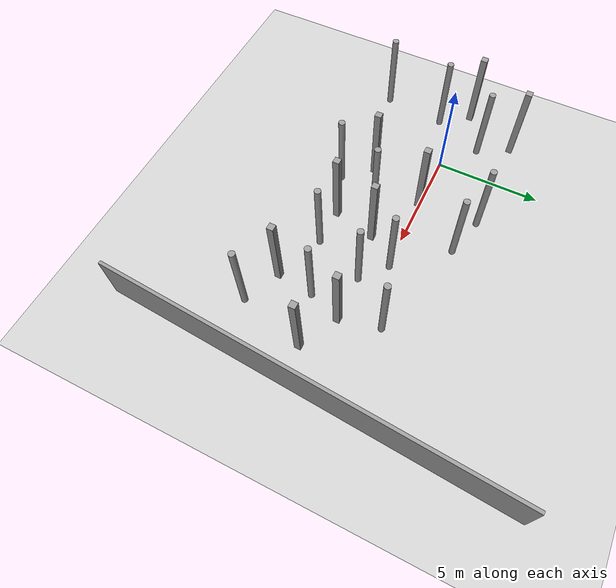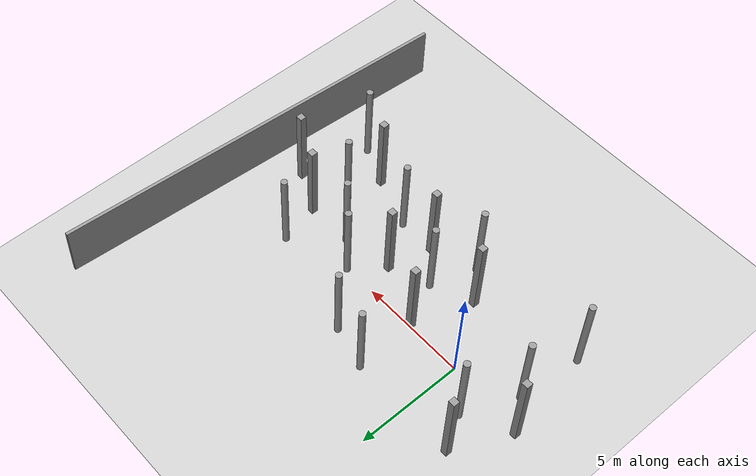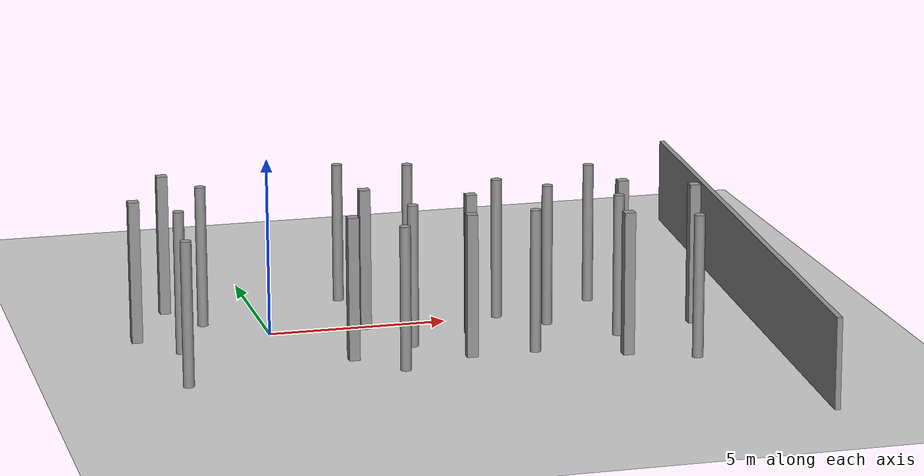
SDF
<sdf version="1.6">
 <world name="default">
  <model name="ground_plane">
   <static>1</static>
   <link name="link">
    <collision name="collision">
     <geometry><plane><normal>0 0 1</normal><size>100 100</size></plane></geometry>
    </collision>
    <visual name="visual">
     <cast_shadows>0</cast_shadows>
     <geometry><plane><normal>0 0 1</normal><size>100 100</size></plane></geometry>
     <material>
      <script><uri>file://media/materials/scripts/gazebo.material</uri><name>Gazebo/Gray</name></script>
     </material>
    </visual>
   </link>
  </model>
  <model name="unit_box_clone">
   <link name="link">
    <inertial>
     <mass>1000</mass>
     <inertia><ixx>166.667</ixx><ixy>0</ixy><ixz>0</ixz><iyy>166.667</iyy><iyz>0</iyz><izz>166.667</izz></inertia>
    </inertial>
    <visual name="visual">
     <geometry><box><size>0.3 0.3 4</size></box></geometry>
     <material>
      <script><name>Gazebo/Grey</name><uri>file://media/materials/scripts/gazebo.material</uri></script>
      <shader type="vertex"><normal_map>__default__</normal_map></shader>
      <ambient>0.3 0.3 0.3 1</ambient>
      <diffuse>0.7 0.7 0.7 1</diffuse>
      <specular>0.01 0.01 0.01 1</specular>
      <emissive>0 0 0 1</emissive>
     </material>
    </visual>
    <collision name="collision">
     <geometry><box><size>0.3 0.3 4</size></box></geometry>
     <surface>
      <friction>
       <ode><mu>1</mu><mu2>1</mu2><fdir1>0 0 0</fdir1><slip1>0</slip1><slip2>0</slip2></ode>
       <torsional>
        <coefficient>1</coefficient>
        <patch_radius>0</patch_radius>
        <surface_radius>0</surface_radius>
        <use_patch_radius>1</use_patch_radius>
        <ode><slip>0</slip></ode>
       </torsional>
      </friction>
      <bounce><restitution_coefficient>0</restitution_coefficient><threshold>1e+06</threshold></bounce>
      <contact>
       <collide_without_contact>0</collide_without_contact>
       <collide_without_contact_bitmask>1</collide_without_contact_bitmask>
       <collide_bitmask>1</collide_bitmask>
       <ode>
        <soft_cfm>0</soft_cfm>
        <soft_erp>0.2</soft_erp>
        <kp>1e+13</kp>
        <kd>1</kd>
        <max_vel>0.01</max_vel>
        <min_depth>0</min_depth>
       </ode>
       <bullet>
        <split_impulse>1</split_impulse>
        <split_impulse_penetration_threshold>-0.01</split_impulse_penetration_threshold>
        <soft_cfm>0</soft_cfm>
        <soft_erp>0.2</soft_erp>
        <kp>1e+13</kp>
        <kd>1</kd>
       </bullet>
      </contact>
     </surface>
    </collision>
   </link>
   <static>0</static>
   <pose>-3.66858 0.277519 2.00001 -6.1e-05 -2e-06 -0.000344</pose>
  </model>
  <model name="unit_box_clone_2">
   <link name="link">
    <inertial>
     <mass>1000</mass>
     <inertia><ixx>166.667</ixx><ixy>0</ixy><ixz>0</ixz><iyy>166.667</iyy><iyz>0</iyz><izz>166.667</izz></inertia>
    </inertial>
    <visual name="visual">
     <geometry><box><size>0.3 0.3 4</size></box></geometry>
     <material>
      <script><name>Gazebo/Grey</name><uri>file://media/materials/scripts/gazebo.material</uri></script>
      <shader type="vertex"><normal_map>__default__</normal_map></shader>
      <ambient>0.3 0.3 0.3 1</ambient>
      <diffuse>0.7 0.7 0.7 1</diffuse>
      <specular>0.01 0.01 0.01 1</specular>
      <emissive>0 0 0 1</emissive>
     </material>
    </visual>
    <collision name="collision">
     <geometry><box><size>0.3 0.3 4</size></box></geometry>
     <surface>
      <friction>
       <ode><mu>1</mu><mu2>1</mu2><fdir1>0 0 0</fdir1><slip1>0</slip1><slip2>0</slip2></ode>
       <torsional>
        <coefficient>1</coefficient>
        <patch_radius>0</patch_radius>
        <surface_radius>0</surface_radius>
        <use_patch_radius>1</use_patch_radius>
        <ode><slip>0</slip></ode>
       </torsional>
      </friction>
      <bounce><restitution_coefficient>0</restitution_coefficient><threshold>1e+06</threshold></bounce>
      <contact>
       <collide_without_contact>0</collide_without_contact>
       <collide_without_contact_bitmask>1</collide_without_contact_bitmask>
       <collide_bitmask>1</collide_bitmask>
       <ode>
        <soft_cfm>0</soft_cfm>
        <soft_erp>0.2</soft_erp>
        <kp>1e+13</kp>
        <kd>1</kd>
        <max_vel>0.01</max_vel>
        <min_depth>0</min_depth>
       </ode>
       <bullet>
        <split_impulse>1</split_impulse>
        <split_impulse_penetration_threshold>-0.01</split_impulse_penetration_threshold>
        <soft_cfm>0</soft_cfm>
        <soft_erp>0.2</soft_erp>
        <kp>1e+13</kp>
        <kd>1</kd>
       </bullet>
      </contact>
     </surface>
    </collision>
   </link>
   <static>0</static>
   <pose>4.92525 -3.34794 2 7e-06 -1.8e-05 -0.008091</pose>
  </model>
  <model name="unit_box_clone_17">
   <link name="link">
    <inertial>
     <mass>1000</mass>
     <inertia><ixx>166.667</ixx><ixy>0</ixy><ixz>0</ixz><iyy>166.667</iyy><iyz>0</iyz><izz>166.667</izz></inertia>
    </inertial>
    <visual name="visual">
     <geometry><box><size>0.3 0.3 4</size></box></geometry>
     <material>
      <script><name>Gazebo/Grey</name><uri>file://media/materials/scripts/gazebo.material</uri></script>
      <shader type="vertex"><normal_map>__default__</normal_map></shader>
      <ambient>0.3 0.3 0.3 1</ambient>
      <diffuse>0.7 0.7 0.7 1</diffuse>
      <specular>0.01 0.01 0.01 1</specular>
      <emissive>0 0 0 1</emissive>
     </material>
    </visual>
    <collision name="collision">
     <geometry><box><size>0.3 0.3 4</size></box></geometry>
     <surface>
      <friction>
       <ode><mu>1</mu><mu2>1</mu2><fdir1>0 0 0</fdir1><slip1>0</slip1><slip2>0</slip2></ode>
       <torsional>
        <coefficient>1</coefficient>
        <patch_radius>0</patch_radius>
        <surface_radius>0</surface_radius>
        <use_patch_radius>1</use_patch_radius>
        <ode><slip>0</slip></ode>
       </torsional>
      </friction>
      <bounce><restitution_coefficient>0</restitution_coefficient><threshold>1e+06</threshold></bounce>
      <contact>
       <collide_without_contact>0</collide_without_contact>
       <collide_without_contact_bitmask>1</collide_without_contact_bitmask>
       <collide_bitmask>1</collide_bitmask>
       <ode>
        <soft_cfm>0</soft_cfm>
        <soft_erp>0.2</soft_erp>
        <kp>1e+13</kp>
        <kd>1</kd>
        <max_vel>0.01</max_vel>
        <min_depth>0</min_depth>
       </ode>
       <bullet>
        <split_impulse>1</split_impulse>
        <split_impulse_penetration_threshold>-0.01</split_impulse_penetration_threshold>
        <soft_cfm>0</soft_cfm>
        <soft_erp>0.2</soft_erp>
        <kp>1e+13</kp>
        <kd>1</kd>
       </bullet>
      </contact>
     </surface>
    </collision>
   </link>
   <static>0</static>
   <pose>-2.44658 2.8469 2 0 -1e-06 -0.000979</pose>
  </model>
  <model name="unit_cylinder_clone">
   <link name="link">
    <inertial>
     <mass>1000</mass>
     <inertia><ixx>145.833</ixx><ixy>0</ixy><ixz>0</ixz><iyy>145.833</iyy><iyz>0</iyz><izz>125</izz></inertia>
    </inertial>
    <visual name="visual">
     <geometry><cylinder><radius>0.15</radius><length>4</length></cylinder></geometry>
     <material>
      <script><name>Gazebo/Grey</name><uri>file://media/materials/scripts/gazebo.material</uri></script>
      <shader type="vertex"><normal_map>__default__</normal_map></shader>
      <ambient>0.3 0.3 0.3 1</ambient>
      <diffuse>0.7 0.7 0.7 1</diffuse>
      <specular>0.01 0.01 0.01 1</specular>
      <emissive>0 0 0 1</emissive>
     </material>
    </visual>
    <collision name="collision">
     <geometry><cylinder><radius>0.15</radius><length>4</length></cylinder></geometry>
     <surface>
      <friction>
       <ode><mu>1</mu><mu2>1</mu2><fdir1>0 0 0</fdir1><slip1>0</slip1><slip2>0</slip2></ode>
       <torsional>
        <coefficient>1</coefficient>
        <patch_radius>0</patch_radius>
        <surface_radius>0</surface_radius>
        <use_patch_radius>1</use_patch_radius>
        <ode><slip>0</slip></ode>
       </torsional>
      </friction>
      <bounce><restitution_coefficient>0</restitution_coefficient><threshold>1e+06</threshold></bounce>
      <contact>
       <collide_without_contact>0</collide_without_contact>
       <collide_without_contact_bitmask>1</collide_without_contact_bitmask>
       <collide_bitmask>1</collide_bitmask>
       <ode>
        <soft_cfm>0</soft_cfm>
        <soft_erp>0.2</soft_erp>
        <kp>1e+13</kp>
        <kd>1</kd>
        <max_vel>0.01</max_vel>
        <min_depth>0</min_depth>
       </ode>
       <bullet>
        <split_impulse>1</split_impulse>
        <split_impulse_penetration_threshold>-0.01</split_impulse_penetration_threshold>
        <soft_cfm>0</soft_cfm>
        <soft_erp>0.2</soft_erp>
        <kp>1e+13</kp>
        <kd>1</kd>
       </bullet>
      </contact>
     </surface>
    </collision>
   </link>
   <static>0</static>
   <pose>-1.61793 1.36476 1.99998 -1e-06 1e-06 -0.091973</pose>
  </model>
  <model name="unit_cylinder_clone_0">
   <link name="link">
    <inertial>
     <mass>1000</mass>
     <inertia><ixx>145.833</ixx><ixy>0</ixy><ixz>0</ixz><iyy>145.833</iyy><iyz>0</iyz><izz>125</izz></inertia>
    </inertial>
    <visual name="visual">
     <geometry><cylinder><radius>0.15</radius><length>4</length></cylinder></geometry>
     <material>
      <script><name>Gazebo/Grey</name><uri>file://media/materials/scripts/gazebo.material</uri></script>
      <shader type="vertex"><normal_map>__default__</normal_map></shader>
      <ambient>0.3 0.3 0.3 1</ambient>
      <diffuse>0.7 0.7 0.7 1</diffuse>
      <specular>0.01 0.01 0.01 1</specular>
      <emissive>0 0 0 1</emissive>
     </material>
    </visual>
    <collision name="collision">
     <geometry><cylinder><radius>0.15</radius><length>4</length></cylinder></geometry>
     <surface>
      <friction>
       <ode><mu>1</mu><mu2>1</mu2><fdir1>0 0 0</fdir1><slip1>0</slip1><slip2>0</slip2></ode>
       <torsional>
        <coefficient>1</coefficient>
        <patch_radius>0</patch_radius>
        <surface_radius>0</surface_radius>
        <use_patch_radius>1</use_patch_radius>
        <ode><slip>0</slip></ode>
       </torsional>
      </friction>
      <bounce><restitution_coefficient>0</restitution_coefficient><threshold>1e+06</threshold></bounce>
      <contact>
       <collide_without_contact>0</collide_without_contact>
       <collide_without_contact_bitmask>1</collide_without_contact_bitmask>
       <collide_bitmask>1</collide_bitmask>
       <ode>
        <soft_cfm>0</soft_cfm>
        <soft_erp>0.2</soft_erp>
        <kp>1e+13</kp>
        <kd>1</kd>
        <max_vel>0.01</max_vel>
        <min_depth>0</min_depth>
       </ode>
       <bullet>
        <split_impulse>1</split_impulse>
        <split_impulse_penetration_threshold>-0.01</split_impulse_penetration_threshold>
        <soft_cfm>0</soft_cfm>
        <soft_erp>0.2</soft_erp>
        <kp>1e+13</kp>
        <kd>1</kd>
       </bullet>
      </contact>
     </surface>
    </collision>
   </link>
   <static>0</static>
   <pose>6.71936 -3.36683 1.99998 -2e-06 -0 -0.080782</pose>
  </model>
  <model name="unit_cylinder_clone_0_clone">
   <link name="link">
    <inertial>
     <mass>1000</mass>
     <inertia><ixx>145.833</ixx><ixy>0</ixy><ixz>0</ixz><iyy>145.833</iyy><iyz>0</iyz><izz>125</izz></inertia>
    </inertial>
    <visual name="visual">
     <geometry><cylinder><radius>0.15</radius><length>4</length></cylinder></geometry>
     <material>
      <script><name>Gazebo/Grey</name><uri>file://media/materials/scripts/gazebo.material</uri></script>
      <shader type="vertex"><normal_map>__default__</normal_map></shader>
      <ambient>0.3 0.3 0.3 1</ambient>
      <diffuse>0.7 0.7 0.7 1</diffuse>
      <specular>0.01 0.01 0.01 1</specular>
      <emissive>0 0 0 1</emissive>
     </material>
    </visual>
    <collision name="collision">
     <geometry><cylinder><radius>0.15</radius><length>4</length></cylinder></geometry>
     <surface>
      <friction>
       <ode><mu>1</mu><mu2>1</mu2><fdir1>0 0 0</fdir1><slip1>0</slip1><slip2>0</slip2></ode>
       <torsional>
        <coefficient>1</coefficient>
        <patch_radius>0</patch_radius>
        <surface_radius>0</surface_radius>
        <use_patch_radius>1</use_patch_radius>
        <ode><slip>0</slip></ode>
       </torsional>
      </friction>
      <bounce><restitution_coefficient>0</restitution_coefficient><threshold>1e+06</threshold></bounce>
      <contact>
       <collide_without_contact>0</collide_without_contact>
       <collide_without_contact_bitmask>1</collide_without_contact_bitmask>
       <collide_bitmask>1</collide_bitmask>
       <ode>
        <soft_cfm>0</soft_cfm>
        <soft_erp>0.2</soft_erp>
        <kp>1e+13</kp>
        <kd>1</kd>
        <max_vel>0.01</max_vel>
        <min_depth>0</min_depth>
       </ode>
       <bullet>
        <split_impulse>1</split_impulse>
        <split_impulse_penetration_threshold>-0.01</split_impulse_penetration_threshold>
        <soft_cfm>0</soft_cfm>
        <soft_erp>0.2</soft_erp>
        <kp>1e+13</kp>
        <kd>1</kd>
       </bullet>
      </contact>
     </surface>
    </collision>
   </link>
   <static>0</static>
   <pose>10.8459 -4.99246 1.99998 -1e-06 -1e-06 -0.075138</pose>
  </model>
  <model name="unit_cylinder_clone_6">
   <link name="link">
    <inertial>
     <mass>1000</mass>
     <inertia><ixx>145.833</ixx><ixy>0</ixy><ixz>0</ixz><iyy>145.833</iyy><iyz>0</iyz><izz>125</izz></inertia>
    </inertial>
    <visual name="visual">
     <geometry><cylinder><radius>0.15</radius><length>4</length></cylinder></geometry>
     <material>
      <script><name>Gazebo/Grey</name><uri>file://media/materials/scripts/gazebo.material</uri></script>
      <shader type="vertex"><normal_map>__default__</normal_map></shader>
      <ambient>0.3 0.3 0.3 1</ambient>
      <diffuse>0.7 0.7 0.7 1</diffuse>
      <specular>0.01 0.01 0.01 1</specular>
      <emissive>0 0 0 1</emissive>
     </material>
    </visual>
    <collision name="collision">
     <geometry><cylinder><radius>0.15</radius><length>4</length></cylinder></geometry>
     <surface>
      <friction>
       <ode><mu>1</mu><mu2>1</mu2><fdir1>0 0 0</fdir1><slip1>0</slip1><slip2>0</slip2></ode>
       <torsional>
        <coefficient>1</coefficient>
        <patch_radius>0</patch_radius>
        <surface_radius>0</surface_radius>
        <use_patch_radius>1</use_patch_radius>
        <ode><slip>0</slip></ode>
       </torsional>
      </friction>
      <bounce><restitution_coefficient>0</restitution_coefficient><threshold>1e+06</threshold></bounce>
      <contact>
       <collide_without_contact>0</collide_without_contact>
       <collide_without_contact_bitmask>1</collide_without_contact_bitmask>
       <collide_bitmask>1</collide_bitmask>
       <ode>
        <soft_cfm>0</soft_cfm>
        <soft_erp>0.2</soft_erp>
        <kp>1e+13</kp>
        <kd>1</kd>
        <max_vel>0.01</max_vel>
        <min_depth>0</min_depth>
       </ode>
       <bullet>
        <split_impulse>1</split_impulse>
        <split_impulse_penetration_threshold>-0.01</split_impulse_penetration_threshold>
        <soft_cfm>0</soft_cfm>
        <soft_erp>0.2</soft_erp>
        <kp>1e+13</kp>
        <kd>1</kd>
       </bullet>
      </contact>
     </surface>
    </collision>
   </link>
   <static>0</static>
   <pose>4.51495 2.35309 1.99998 -1e-06 1e-06 -0.081282</pose>
  </model>
  <model name="unit_cylinder_clone_1_clone_7">
   <link name="link">
    <inertial>
     <mass>1000</mass>
     <inertia><ixx>145.833</ixx><ixy>0</ixy><ixz>0</ixz><iyy>145.833</iyy><iyz>0</iyz><izz>125</izz></inertia>
    </inertial>
    <visual name="visual">
     <geometry><cylinder><radius>0.15</radius><length>4</length></cylinder></geometry>
     <material>
      <script><name>Gazebo/Grey</name><uri>file://media/materials/scripts/gazebo.material</uri></script>
      <shader type="vertex"><normal_map>__default__</normal_map></shader>
      <ambient>0.3 0.3 0.3 1</ambient>
      <diffuse>0.7 0.7 0.7 1</diffuse>
      <specular>0.01 0.01 0.01 1</specular>
      <emissive>0 0 0 1</emissive>
     </material>
    </visual>
    <collision name="collision">
     <geometry><cylinder><radius>0.15</radius><length>4</length></cylinder></geometry>
     <surface>
      <friction>
       <ode><mu>1</mu><mu2>1</mu2><fdir1>0 0 0</fdir1><slip1>0</slip1><slip2>0</slip2></ode>
       <torsional>
        <coefficient>1</coefficient>
        <patch_radius>0</patch_radius>
        <surface_radius>0</surface_radius>
        <use_patch_radius>1</use_patch_radius>
        <ode><slip>0</slip></ode>
       </torsional>
      </friction>
      <bounce><restitution_coefficient>0</restitution_coefficient><threshold>1e+06</threshold></bounce>
      <contact>
       <collide_without_contact>0</collide_without_contact>
       <collide_without_contact_bitmask>1</collide_without_contact_bitmask>
       <collide_bitmask>1</collide_bitmask>
       <ode>
        <soft_cfm>0</soft_cfm>
        <soft_erp>0.2</soft_erp>
        <kp>1e+13</kp>
        <kd>1</kd>
        <max_vel>0.01</max_vel>
        <min_depth>0</min_depth>
       </ode>
       <bullet>
        <split_impulse>1</split_impulse>
        <split_impulse_penetration_threshold>-0.01</split_impulse_penetration_threshold>
        <soft_cfm>0</soft_cfm>
        <soft_erp>0.2</soft_erp>
        <kp>1e+13</kp>
        <kd>1</kd>
       </bullet>
      </contact>
     </surface>
    </collision>
   </link>
   <static>0</static>
   <pose>7.72395 -0.939014 1.99995 -0.000251 0.000106 -0.39408</pose>
  </model>
  <model name="unit_cylinder_clone_1_clone_8">
   <link name="link">
    <inertial>
     <mass>1000</mass>
     <inertia><ixx>145.833</ixx><ixy>0</ixy><ixz>0</ixz><iyy>145.833</iyy><iyz>0</iyz><izz>125</izz></inertia>
    </inertial>
    <visual name="visual">
     <geometry><cylinder><radius>0.15</radius><length>4</length></cylinder></geometry>
     <material>
      <script><name>Gazebo/Grey</name><uri>file://media/materials/scripts/gazebo.material</uri></script>
      <shader type="vertex"><normal_map>__default__</normal_map></shader>
      <ambient>0.3 0.3 0.3 1</ambient>
      <diffuse>0.7 0.7 0.7 1</diffuse>
      <specular>0.01 0.01 0.01 1</specular>
      <emissive>0 0 0 1</emissive>
     </material>
    </visual>
    <collision name="collision">
     <geometry><cylinder><radius>0.15</radius><length>4</length></cylinder></geometry>
     <surface>
      <friction>
       <ode><mu>1</mu><mu2>1</mu2><fdir1>0 0 0</fdir1><slip1>0</slip1><slip2>0</slip2></ode>
       <torsional>
        <coefficient>1</coefficient>
        <patch_radius>0</patch_radius>
        <surface_radius>0</surface_radius>
        <use_patch_radius>1</use_patch_radius>
        <ode><slip>0</slip></ode>
       </torsional>
      </friction>
      <bounce><restitution_coefficient>0</restitution_coefficient><threshold>1e+06</threshold></bounce>
      <contact>
       <collide_without_contact>0</collide_without_contact>
       <collide_without_contact_bitmask>1</collide_without_contact_bitmask>
       <collide_bitmask>1</collide_bitmask>
       <ode>
        <soft_cfm>0</soft_cfm>
        <soft_erp>0.2</soft_erp>
        <kp>1e+13</kp>
        <kd>1</kd>
        <max_vel>0.01</max_vel>
        <min_depth>0</min_depth>
       </ode>
       <bullet>
        <split_impulse>1</split_impulse>
        <split_impulse_penetration_threshold>-0.01</split_impulse_penetration_threshold>
        <soft_cfm>0</soft_cfm>
        <soft_erp>0.2</soft_erp>
        <kp>1e+13</kp>
        <kd>1</kd>
       </bullet>
      </contact>
     </surface>
    </collision>
   </link>
   <static>0</static>
   <pose>-2.65577 -1.06297 1.99995 -0.000251 0.000106 -0.392708</pose>
  </model>
  <model name="unit_cylinder_clone_1_clone_29">
   <link name="link">
    <inertial>
     <mass>1000</mass>
     <inertia><ixx>145.833</ixx><ixy>0</ixy><ixz>0</ixz><iyy>145.833</iyy><iyz>0</iyz><izz>125</izz></inertia>
    </inertial>
    <visual name="visual">
     <geometry><cylinder><radius>0.15</radius><length>4</length></cylinder></geometry>
     <material>
      <script><name>Gazebo/Grey</name><uri>file://media/materials/scripts/gazebo.material</uri></script>
      <shader type="vertex"><normal_map>__default__</normal_map></shader>
      <ambient>0.3 0.3 0.3 1</ambient>
      <diffuse>0.7 0.7 0.7 1</diffuse>
      <specular>0.01 0.01 0.01 1</specular>
      <emissive>0 0 0 1</emissive>
     </material>
    </visual>
    <collision name="collision">
     <geometry><cylinder><radius>0.15</radius><length>4</length></cylinder></geometry>
     <surface>
      <friction>
       <ode><mu>1</mu><mu2>1</mu2><fdir1>0 0 0</fdir1><slip1>0</slip1><slip2>0</slip2></ode>
       <torsional>
        <coefficient>1</coefficient>
        <patch_radius>0</patch_radius>
        <surface_radius>0</surface_radius>
        <use_patch_radius>1</use_patch_radius>
        <ode><slip>0</slip></ode>
       </torsional>
      </friction>
      <bounce><restitution_coefficient>0</restitution_coefficient><threshold>1e+06</threshold></bounce>
      <contact>
       <collide_without_contact>0</collide_without_contact>
       <collide_without_contact_bitmask>1</collide_without_contact_bitmask>
       <collide_bitmask>1</collide_bitmask>
       <ode>
        <soft_cfm>0</soft_cfm>
        <soft_erp>0.2</soft_erp>
        <kp>1e+13</kp>
        <kd>1</kd>
        <max_vel>0.01</max_vel>
        <min_depth>0</min_depth>
       </ode>
       <bullet>
        <split_impulse>1</split_impulse>
        <split_impulse_penetration_threshold>-0.01</split_impulse_penetration_threshold>
        <soft_cfm>0</soft_cfm>
        <soft_erp>0.2</soft_erp>
        <kp>1e+13</kp>
        <kd>1</kd>
       </bullet>
      </contact>
     </surface>
    </collision>
   </link>
   <static>0</static>
   <pose>9.34914 -2.44759 1.99995 -0.000251 0.000106 -0.394694</pose>
  </model>
  <model name="unit_cylinder_clone_1_clone_33">
   <link name="link">
    <inertial>
     <mass>1000</mass>
     <inertia><ixx>145.833</ixx><ixy>0</ixy><ixz>0</ixz><iyy>145.833</iyy><iyz>0</iyz><izz>125</izz></inertia>
    </inertial>
    <visual name="visual">
     <geometry><cylinder><radius>0.15</radius><length>4</length></cylinder></geometry>
     <material>
      <script><name>Gazebo/Grey</name><uri>file://media/materials/scripts/gazebo.material</uri></script>
      <shader type="vertex"><normal_map>__default__</normal_map></shader>
      <ambient>0.3 0.3 0.3 1</ambient>
      <diffuse>0.7 0.7 0.7 1</diffuse>
      <specular>0.01 0.01 0.01 1</specular>
      <emissive>0 0 0 1</emissive>
     </material>
    </visual>
    <collision name="collision">
     <geometry><cylinder><radius>0.15</radius><length>4</length></cylinder></geometry>
     <surface>
      <friction>
       <ode><mu>1</mu><mu2>1</mu2><fdir1>0 0 0</fdir1><slip1>0</slip1><slip2>0</slip2></ode>
       <torsional>
        <coefficient>1</coefficient>
        <patch_radius>0</patch_radius>
        <surface_radius>0</surface_radius>
        <use_patch_radius>1</use_patch_radius>
        <ode><slip>0</slip></ode>
       </torsional>
      </friction>
      <bounce><restitution_coefficient>0</restitution_coefficient><threshold>1e+06</threshold></bounce>
      <contact>
       <collide_without_contact>0</collide_without_contact>
       <collide_without_contact_bitmask>1</collide_without_contact_bitmask>
       <collide_bitmask>1</collide_bitmask>
       <ode>
        <soft_cfm>0</soft_cfm>
        <soft_erp>0.2</soft_erp>
        <kp>1e+13</kp>
        <kd>1</kd>
        <max_vel>0.01</max_vel>
        <min_depth>0</min_depth>
       </ode>
       <bullet>
        <split_impulse>1</split_impulse>
        <split_impulse_penetration_threshold>-0.01</split_impulse_penetration_threshold>
        <soft_cfm>0</soft_cfm>
        <soft_erp>0.2</soft_erp>
        <kp>1e+13</kp>
        <kd>1</kd>
       </bullet>
      </contact>
     </surface>
    </collision>
   </link>
   <static>0</static>
   <pose>-2.98881 -4.04362 1.99995 -0.00025 0.000108 -0.386939</pose>
  </model>
  <model name="unit_cylinder_clone_1_clone_7_clone_9">
   <link name="link">
    <inertial>
     <mass>1000</mass>
     <inertia><ixx>145.833</ixx><ixy>0</ixy><ixz>0</ixz><iyy>145.833</iyy><iyz>0</iyz><izz>125</izz></inertia>
    </inertial>
    <visual name="visual">
     <geometry><cylinder><radius>0.15</radius><length>4</length></cylinder></geometry>
     <material>
      <script><name>Gazebo/Grey</name><uri>file://media/materials/scripts/gazebo.material</uri></script>
      <shader type="vertex"><normal_map>__default__</normal_map></shader>
      <ambient>0.3 0.3 0.3 1</ambient>
      <diffuse>0.7 0.7 0.7 1</diffuse>
      <specular>0.01 0.01 0.01 1</specular>
      <emissive>0 0 0 1</emissive>
     </material>
    </visual>
    <collision name="collision">
     <geometry><cylinder><radius>0.15</radius><length>4</length></cylinder></geometry>
     <surface>
      <friction>
       <ode><mu>1</mu><mu2>1</mu2><fdir1>0 0 0</fdir1><slip1>0</slip1><slip2>0</slip2></ode>
       <torsional>
        <coefficient>1</coefficient>
        <patch_radius>0</patch_radius>
        <surface_radius>0</surface_radius>
        <use_patch_radius>1</use_patch_radius>
        <ode><slip>0</slip></ode>
       </torsional>
      </friction>
      <bounce><restitution_coefficient>0</restitution_coefficient><threshold>1e+06</threshold></bounce>
      <contact>
       <collide_without_contact>0</collide_without_contact>
       <collide_without_contact_bitmask>1</collide_without_contact_bitmask>
       <collide_bitmask>1</collide_bitmask>
       <ode>
        <soft_cfm>0</soft_cfm>
        <soft_erp>0.2</soft_erp>
        <kp>1e+13</kp>
        <kd>1</kd>
        <max_vel>0.01</max_vel>
        <min_depth>0</min_depth>
       </ode>
       <bullet>
        <split_impulse>1</split_impulse>
        <split_impulse_penetration_threshold>-0.01</split_impulse_penetration_threshold>
        <soft_cfm>0</soft_cfm>
        <soft_erp>0.2</soft_erp>
        <kp>1e+13</kp>
        <kd>1</kd>
       </bullet>
      </contact>
     </surface>
    </collision>
   </link>
   <static>0</static>
   <pose>2.90706 -4.1065 1.99995 -0.00025 0.000108 -0.386821</pose>
  </model>
  <model name="unit_cylinder_clone_7">
   <link name="link">
    <inertial>
     <mass>1000</mass>
     <inertia><ixx>145.833</ixx><ixy>0</ixy><ixz>0</ixz><iyy>145.833</iyy><iyz>0</iyz><izz>125</izz></inertia>
    </inertial>
    <visual name="visual">
     <geometry><cylinder><radius>0.15</radius><length>4</length></cylinder></geometry>
     <material>
      <script><name>Gazebo/Grey</name><uri>file://media/materials/scripts/gazebo.material</uri></script>
      <shader type="vertex"><normal_map>__default__</normal_map></shader>
      <ambient>0.3 0.3 0.3 1</ambient>
      <diffuse>0.7 0.7 0.7 1</diffuse>
      <specular>0.01 0.01 0.01 1</specular>
      <emissive>0 0 0 1</emissive>
     </material>
    </visual>
    <collision name="collision">
     <geometry><cylinder><radius>0.15</radius><length>4</length></cylinder></geometry>
     <surface>
      <friction>
       <ode><mu>1</mu><mu2>1</mu2><fdir1>0 0 0</fdir1><slip1>0</slip1><slip2>0</slip2></ode>
       <torsional>
        <coefficient>1</coefficient>
        <patch_radius>0</patch_radius>
        <surface_radius>0</surface_radius>
        <use_patch_radius>1</use_patch_radius>
        <ode><slip>0</slip></ode>
       </torsional>
      </friction>
      <bounce><restitution_coefficient>0</restitution_coefficient><threshold>1e+06</threshold></bounce>
      <contact>
       <collide_without_contact>0</collide_without_contact>
       <collide_without_contact_bitmask>1</collide_without_contact_bitmask>
       <collide_bitmask>1</collide_bitmask>
       <ode>
        <soft_cfm>0</soft_cfm>
        <soft_erp>0.2</soft_erp>
        <kp>1e+13</kp>
        <kd>1</kd>
        <max_vel>0.01</max_vel>
        <min_depth>0</min_depth>
       </ode>
       <bullet>
        <split_impulse>1</split_impulse>
        <split_impulse_penetration_threshold>-0.01</split_impulse_penetration_threshold>
        <soft_cfm>0</soft_cfm>
        <soft_erp>0.2</soft_erp>
        <kp>1e+13</kp>
        <kd>1</kd>
       </bullet>
      </contact>
     </surface>
    </collision>
   </link>
   <static>0</static>
   <pose>2.58404 2.84351 1.99998 -1e-06 -0 -0.090046</pose>
  </model>
  <model name="unit_cylinder_clone_10">
   <link name="link">
    <inertial>
     <mass>1000</mass>
     <inertia><ixx>145.833</ixx><ixy>0</ixy><ixz>0</ixz><iyy>145.833</iyy><iyz>0</iyz><izz>125</izz></inertia>
    </inertial>
    <visual name="visual">
     <geometry><cylinder><radius>0.15</radius><length>4</length></cylinder></geometry>
     <material>
      <script><name>Gazebo/Grey</name><uri>file://media/materials/scripts/gazebo.material</uri></script>
      <shader type="vertex"><normal_map>__default__</normal_map></shader>
      <ambient>0.3 0.3 0.3 1</ambient>
      <diffuse>0.7 0.7 0.7 1</diffuse>
      <specular>0.01 0.01 0.01 1</specular>
      <emissive>0 0 0 1</emissive>
     </material>
    </visual>
    <collision name="collision">
     <geometry><cylinder><radius>0.15</radius><length>4</length></cylinder></geometry>
     <surface>
      <friction>
       <ode><mu>1</mu><mu2>1</mu2><fdir1>0 0 0</fdir1><slip1>0</slip1><slip2>0</slip2></ode>
       <torsional>
        <coefficient>1</coefficient>
        <patch_radius>0</patch_radius>
        <surface_radius>0</surface_radius>
        <use_patch_radius>1</use_patch_radius>
        <ode><slip>0</slip></ode>
       </torsional>
      </friction>
      <bounce><restitution_coefficient>0</restitution_coefficient><threshold>1e+06</threshold></bounce>
      <contact>
       <collide_without_contact>0</collide_without_contact>
       <collide_without_contact_bitmask>1</collide_without_contact_bitmask>
       <collide_bitmask>1</collide_bitmask>
       <ode>
        <soft_cfm>0</soft_cfm>
        <soft_erp>0.2</soft_erp>
        <kp>1e+13</kp>
        <kd>1</kd>
        <max_vel>0.01</max_vel>
        <min_depth>0</min_depth>
       </ode>
       <bullet>
        <split_impulse>1</split_impulse>
        <split_impulse_penetration_threshold>-0.01</split_impulse_penetration_threshold>
        <soft_cfm>0</soft_cfm>
        <soft_erp>0.2</soft_erp>
        <kp>1e+13</kp>
        <kd>1</kd>
       </bullet>
      </contact>
     </surface>
    </collision>
   </link>
   <static>0</static>
   <pose>9.47741 1.00078 1.99998 -1e-06 1e-06 -0.079017</pose>
  </model>
  <model name="unit_cylinder_clone_11">
   <link name="link">
    <inertial>
     <mass>1000</mass>
     <inertia><ixx>145.833</ixx><ixy>0</ixy><ixz>0</ixz><iyy>145.833</iyy><iyz>0</iyz><izz>125</izz></inertia>
    </inertial>
    <visual name="visual">
     <geometry><cylinder><radius>0.15</radius><length>4</length></cylinder></geometry>
     <material>
      <script><name>Gazebo/Grey</name><uri>file://media/materials/scripts/gazebo.material</uri></script>
      <shader type="vertex"><normal_map>__default__</normal_map></shader>
      <ambient>0.3 0.3 0.3 1</ambient>
      <diffuse>0.7 0.7 0.7 1</diffuse>
      <specular>0.01 0.01 0.01 1</specular>
      <emissive>0 0 0 1</emissive>
     </material>
    </visual>
    <collision name="collision">
     <geometry><cylinder><radius>0.15</radius><length>4</length></cylinder></geometry>
     <surface>
      <friction>
       <ode><mu>1</mu><mu2>1</mu2><fdir1>0 0 0</fdir1><slip1>0</slip1><slip2>0</slip2></ode>
       <torsional>
        <coefficient>1</coefficient>
        <patch_radius>0</patch_radius>
        <surface_radius>0</surface_radius>
        <use_patch_radius>1</use_patch_radius>
        <ode><slip>0</slip></ode>
       </torsional>
      </friction>
      <bounce><restitution_coefficient>0</restitution_coefficient><threshold>1e+06</threshold></bounce>
      <contact>
       <collide_without_contact>0</collide_without_contact>
       <collide_without_contact_bitmask>1</collide_without_contact_bitmask>
       <collide_bitmask>1</collide_bitmask>
       <ode>
        <soft_cfm>0</soft_cfm>
        <soft_erp>0.2</soft_erp>
        <kp>1e+13</kp>
        <kd>1</kd>
        <max_vel>0.01</max_vel>
        <min_depth>0</min_depth>
       </ode>
       <bullet>
        <split_impulse>1</split_impulse>
        <split_impulse_penetration_threshold>-0.01</split_impulse_penetration_threshold>
        <soft_cfm>0</soft_cfm>
        <soft_erp>0.2</soft_erp>
        <kp>1e+13</kp>
        <kd>1</kd>
       </bullet>
      </contact>
     </surface>
    </collision>
   </link>
   <static>0</static>
   <pose>6.53088 0.070358 1.99998 -1e-06 1e-06 -0.086726</pose>
  </model>
  <model name="unit_cylinder_clone_clone_2">
   <link name="link">
    <inertial>
     <mass>1000</mass>
     <inertia><ixx>145.833</ixx><ixy>0</ixy><ixz>0</ixz><iyy>145.833</iyy><iyz>0</iyz><izz>125</izz></inertia>
    </inertial>
    <visual name="visual">
     <geometry><cylinder><radius>0.15</radius><length>4</length></cylinder></geometry>
     <material>
      <script><name>Gazebo/Grey</name><uri>file://media/materials/scripts/gazebo.material</uri></script>
      <shader type="vertex"><normal_map>__default__</normal_map></shader>
      <ambient>0.3 0.3 0.3 1</ambient>
      <diffuse>0.7 0.7 0.7 1</diffuse>
      <specular>0.01 0.01 0.01 1</specular>
      <emissive>0 0 0 1</emissive>
     </material>
    </visual>
    <collision name="collision">
     <geometry><cylinder><radius>0.15</radius><length>4</length></cylinder></geometry>
     <surface>
      <friction>
       <ode><mu>1</mu><mu2>1</mu2><fdir1>0 0 0</fdir1><slip1>0</slip1><slip2>0</slip2></ode>
       <torsional>
        <coefficient>1</coefficient>
        <patch_radius>0</patch_radius>
        <surface_radius>0</surface_radius>
        <use_patch_radius>1</use_patch_radius>
        <ode><slip>0</slip></ode>
       </torsional>
      </friction>
      <bounce><restitution_coefficient>0</restitution_coefficient><threshold>1e+06</threshold></bounce>
      <contact>
       <collide_without_contact>0</collide_without_contact>
       <collide_without_contact_bitmask>1</collide_without_contact_bitmask>
       <collide_bitmask>1</collide_bitmask>
       <ode>
        <soft_cfm>0</soft_cfm>
        <soft_erp>0.2</soft_erp>
        <kp>1e+13</kp>
        <kd>1</kd>
        <max_vel>0.01</max_vel>
        <min_depth>0</min_depth>
       </ode>
       <bullet>
        <split_impulse>1</split_impulse>
        <split_impulse_penetration_threshold>-0.01</split_impulse_penetration_threshold>
        <soft_cfm>0</soft_cfm>
        <soft_erp>0.2</soft_erp>
        <kp>1e+13</kp>
        <kd>1</kd>
       </bullet>
      </contact>
     </surface>
    </collision>
   </link>
   <static>0</static>
   <pose>3.61349 -2.03387 1.99998 -2e-06 1e-06 -0.083278</pose>
  </model>
  <model name="unit_box_clone_26_clone_1">
   <link name="link">
    <inertial>
     <mass>1000</mass>
     <inertia><ixx>166.667</ixx><ixy>0</ixy><ixz>0</ixz><iyy>166.667</iyy><iyz>0</iyz><izz>166.667</izz></inertia>
    </inertial>
    <visual name="visual">
     <geometry><box><size>0.3 0.3 4</size></box></geometry>
     <material>
      <script><name>Gazebo/Grey</name><uri>file://media/materials/scripts/gazebo.material</uri></script>
      <shader type="vertex"><normal_map>__default__</normal_map></shader>
      <ambient>0.3 0.3 0.3 1</ambient>
      <diffuse>0.7 0.7 0.7 1</diffuse>
      <specular>0.01 0.01 0.01 1</specular>
      <emissive>0 0 0 1</emissive>
     </material>
    </visual>
    <collision name="collision">
     <geometry><box><size>0.3 0.3 4</size></box></geometry>
     <surface>
      <friction>
       <ode><mu>1</mu><mu2>1</mu2><fdir1>0 0 0</fdir1><slip1>0</slip1><slip2>0</slip2></ode>
       <torsional>
        <coefficient>1</coefficient>
        <patch_radius>0</patch_radius>
        <surface_radius>0</surface_radius>
        <use_patch_radius>1</use_patch_radius>
        <ode><slip>0</slip></ode>
       </torsional>
      </friction>
      <bounce><restitution_coefficient>0</restitution_coefficient><threshold>1e+06</threshold></bounce>
      <contact>
       <collide_without_contact>0</collide_without_contact>
       <collide_without_contact_bitmask>1</collide_without_contact_bitmask>
       <collide_bitmask>1</collide_bitmask>
       <ode>
        <soft_cfm>0</soft_cfm>
        <soft_erp>0.2</soft_erp>
        <kp>1e+13</kp>
        <kd>1</kd>
        <max_vel>0.01</max_vel>
        <min_depth>0</min_depth>
       </ode>
       <bullet>
        <split_impulse>1</split_impulse>
        <split_impulse_penetration_threshold>-0.01</split_impulse_penetration_threshold>
        <soft_cfm>0</soft_cfm>
        <soft_erp>0.2</soft_erp>
        <kp>1e+13</kp>
        <kd>1</kd>
       </bullet>
      </contact>
     </surface>
    </collision>
   </link>
   <static>0</static>
   <pose>1.75863 -2.82228 2 -2.5e-05 8e-06 -0.004718</pose>
  </model>
  <model name="unit_box_clone_26_clone_2">
   <link name="link">
    <inertial>
     <mass>1000</mass>
     <inertia><ixx>166.667</ixx><ixy>0</ixy><ixz>0</ixz><iyy>166.667</iyy><iyz>0</iyz><izz>166.667</izz></inertia>
    </inertial>
    <visual name="visual">
     <geometry><box><size>0.3 0.3 4</size></box></geometry>
     <material>
      <script><name>Gazebo/Grey</name><uri>file://media/materials/scripts/gazebo.material</uri></script>
      <shader type="vertex"><normal_map>__default__</normal_map></shader>
      <ambient>0.3 0.3 0.3 1</ambient>
      <diffuse>0.7 0.7 0.7 1</diffuse>
      <specular>0.01 0.01 0.01 1</specular>
      <emissive>0 0 0 1</emissive>
     </material>
    </visual>
    <collision name="collision">
     <geometry><box><size>0.3 0.3 4</size></box></geometry>
     <surface>
      <friction>
       <ode><mu>1</mu><mu2>1</mu2><fdir1>0 0 0</fdir1><slip1>0</slip1><slip2>0</slip2></ode>
       <torsional>
        <coefficient>1</coefficient>
        <patch_radius>0</patch_radius>
        <surface_radius>0</surface_radius>
        <use_patch_radius>1</use_patch_radius>
        <ode><slip>0</slip></ode>
       </torsional>
      </friction>
      <bounce><restitution_coefficient>0</restitution_coefficient><threshold>1e+06</threshold></bounce>
      <contact>
       <collide_without_contact>0</collide_without_contact>
       <collide_without_contact_bitmask>1</collide_without_contact_bitmask>
       <collide_bitmask>1</collide_bitmask>
       <ode>
        <soft_cfm>0</soft_cfm>
        <soft_erp>0.2</soft_erp>
        <kp>1e+13</kp>
        <kd>1</kd>
        <max_vel>0.01</max_vel>
        <min_depth>0</min_depth>
       </ode>
       <bullet>
        <split_impulse>1</split_impulse>
        <split_impulse_penetration_threshold>-0.01</split_impulse_penetration_threshold>
        <soft_cfm>0</soft_cfm>
        <soft_erp>0.2</soft_erp>
        <kp>1e+13</kp>
        <kd>1</kd>
       </bullet>
      </contact>
     </surface>
    </collision>
   </link>
   <static>0</static>
   <pose>5.42187 -1.32656 2 0 -2e-06 -0.000844</pose>
  </model>
  <model name="unit_box_clone_26_clone_3">
   <link name="link">
    <inertial>
     <mass>1000</mass>
     <inertia><ixx>166.667</ixx><ixy>0</ixy><ixz>0</ixz><iyy>166.667</iyy><iyz>0</iyz><izz>166.667</izz></inertia>
    </inertial>
    <visual name="visual">
     <geometry><box><size>0.3 0.3 4</size></box></geometry>
     <material>
      <script><name>Gazebo/Grey</name><uri>file://media/materials/scripts/gazebo.material</uri></script>
      <shader type="vertex"><normal_map>__default__</normal_map></shader>
      <ambient>0.3 0.3 0.3 1</ambient>
      <diffuse>0.7 0.7 0.7 1</diffuse>
      <specular>0.01 0.01 0.01 1</specular>
      <emissive>0 0 0 1</emissive>
     </material>
    </visual>
    <collision name="collision">
     <geometry><box><size>0.3 0.3 4</size></box></geometry>
     <surface>
      <friction>
       <ode><mu>1</mu><mu2>1</mu2><fdir1>0 0 0</fdir1><slip1>0</slip1><slip2>0</slip2></ode>
       <torsional>
        <coefficient>1</coefficient>
        <patch_radius>0</patch_radius>
        <surface_radius>0</surface_radius>
        <use_patch_radius>1</use_patch_radius>
        <ode><slip>0</slip></ode>
       </torsional>
      </friction>
      <bounce><restitution_coefficient>0</restitution_coefficient><threshold>1e+06</threshold></bounce>
      <contact>
       <collide_without_contact>0</collide_without_contact>
       <collide_without_contact_bitmask>1</collide_without_contact_bitmask>
       <collide_bitmask>1</collide_bitmask>
       <ode>
        <soft_cfm>0</soft_cfm>
        <soft_erp>0.2</soft_erp>
        <kp>1e+13</kp>
        <kd>1</kd>
        <max_vel>0.01</max_vel>
        <min_depth>0</min_depth>
       </ode>
       <bullet>
        <split_impulse>1</split_impulse>
        <split_impulse_penetration_threshold>-0.01</split_impulse_penetration_threshold>
        <soft_cfm>0</soft_cfm>
        <soft_erp>0.2</soft_erp>
        <kp>1e+13</kp>
        <kd>1</kd>
       </bullet>
      </contact>
     </surface>
    </collision>
   </link>
   <static>0</static>
   <pose>9.09115 -4.22023 2 -1e-06 -0 -0.002487</pose>
  </model>
  <model name="unit_box_clone_26_clone_4">
   <link name="link">
    <inertial>
     <mass>1000</mass>
     <inertia><ixx>166.667</ixx><ixy>0</ixy><ixz>0</ixz><iyy>166.667</iyy><iyz>0</iyz><izz>166.667</izz></inertia>
    </inertial>
    <visual name="visual">
     <geometry><box><size>0.3 0.3 4</size></box></geometry>
     <material>
      <script><name>Gazebo/Grey</name><uri>file://media/materials/scripts/gazebo.material</uri></script>
      <shader type="vertex"><normal_map>__default__</normal_map></shader>
      <ambient>0.3 0.3 0.3 1</ambient>
      <diffuse>0.7 0.7 0.7 1</diffuse>
      <specular>0.01 0.01 0.01 1</specular>
      <emissive>0 0 0 1</emissive>
     </material>
    </visual>
    <collision name="collision">
     <geometry><box><size>0.3 0.3 4</size></box></geometry>
     <surface>
      <friction>
       <ode><mu>1</mu><mu2>1</mu2><fdir1>0 0 0</fdir1><slip1>0</slip1><slip2>0</slip2></ode>
       <torsional>
        <coefficient>1</coefficient>
        <patch_radius>0</patch_radius>
        <surface_radius>0</surface_radius>
        <use_patch_radius>1</use_patch_radius>
        <ode><slip>0</slip></ode>
       </torsional>
      </friction>
      <bounce><restitution_coefficient>0</restitution_coefficient><threshold>1e+06</threshold></bounce>
      <contact>
       <collide_without_contact>0</collide_without_contact>
       <collide_without_contact_bitmask>1</collide_without_contact_bitmask>
       <collide_bitmask>1</collide_bitmask>
       <ode>
        <soft_cfm>0</soft_cfm>
        <soft_erp>0.2</soft_erp>
        <kp>1e+13</kp>
        <kd>1</kd>
        <max_vel>0.01</max_vel>
        <min_depth>0</min_depth>
       </ode>
       <bullet>
        <split_impulse>1</split_impulse>
        <split_impulse_penetration_threshold>-0.01</split_impulse_penetration_threshold>
        <soft_cfm>0</soft_cfm>
        <soft_erp>0.2</soft_erp>
        <kp>1e+13</kp>
        <kd>1</kd>
       </bullet>
      </contact>
     </surface>
    </collision>
   </link>
   <static>0</static>
   <pose>9.90704 -0.894752 2 -2e-06 5e-06 -0.002676</pose>
  </model>
  <model name="unit_box_clone_26_clone_5">
   <link name="link">
    <inertial>
     <mass>1000</mass>
     <inertia><ixx>166.667</ixx><ixy>0</ixy><ixz>0</ixz><iyy>166.667</iyy><iyz>0</iyz><izz>166.667</izz></inertia>
    </inertial>
    <visual name="visual">
     <geometry><box><size>0.3 0.3 4</size></box></geometry>
     <material>
      <script><name>Gazebo/Grey</name><uri>file://media/materials/scripts/gazebo.material</uri></script>
      <shader type="vertex"><normal_map>__default__</normal_map></shader>
      <ambient>0.3 0.3 0.3 1</ambient>
      <diffuse>0.7 0.7 0.7 1</diffuse>
      <specular>0.01 0.01 0.01 1</specular>
      <emissive>0 0 0 1</emissive>
     </material>
    </visual>
    <collision name="collision">
     <geometry><box><size>0.3 0.3 4</size></box></geometry>
     <surface>
      <friction>
       <ode><mu>1</mu><mu2>1</mu2><fdir1>0 0 0</fdir1><slip1>0</slip1><slip2>0</slip2></ode>
       <torsional>
        <coefficient>1</coefficient>
        <patch_radius>0</patch_radius>
        <surface_radius>0</surface_radius>
        <use_patch_radius>1</use_patch_radius>
        <ode><slip>0</slip></ode>
       </torsional>
      </friction>
      <bounce><restitution_coefficient>0</restitution_coefficient><threshold>1e+06</threshold></bounce>
      <contact>
       <collide_without_contact>0</collide_without_contact>
       <collide_without_contact_bitmask>1</collide_without_contact_bitmask>
       <collide_bitmask>1</collide_bitmask>
       <ode>
        <soft_cfm>0</soft_cfm>
        <soft_erp>0.2</soft_erp>
        <kp>1e+13</kp>
        <kd>1</kd>
        <max_vel>0.01</max_vel>
        <min_depth>0</min_depth>
       </ode>
       <bullet>
        <split_impulse>1</split_impulse>
        <split_impulse_penetration_threshold>-0.01</split_impulse_penetration_threshold>
        <soft_cfm>0</soft_cfm>
        <soft_erp>0.2</soft_erp>
        <kp>1e+13</kp>
        <kd>1</kd>
       </bullet>
      </contact>
     </surface>
    </collision>
   </link>
   <static>0</static>
   <pose>11.7154 -1.81913 2 -1.1e-05 2e-05 -0.002328</pose>
  </model>
  <model name="unit_box_clone_26_clone_10">
   <link name="link">
    <inertial>
     <mass>1000</mass>
     <inertia><ixx>166.667</ixx><ixy>0</ixy><ixz>0</ixz><iyy>166.667</iyy><iyz>0</iyz><izz>166.667</izz></inertia>
    </inertial>
    <visual name="visual">
     <geometry><box><size>0.3 0.3 4</size></box></geometry>
     <material>
      <script><name>Gazebo/Grey</name><uri>file://media/materials/scripts/gazebo.material</uri></script>
      <shader type="vertex"><normal_map>__default__</normal_map></shader>
      <ambient>0.3 0.3 0.3 1</ambient>
      <diffuse>0.7 0.7 0.7 1</diffuse>
      <specular>0.01 0.01 0.01 1</specular>
      <emissive>0 0 0 1</emissive>
     </material>
    </visual>
    <collision name="collision">
     <geometry><box><size>0.3 0.3 4</size></box></geometry>
     <surface>
      <friction>
       <ode><mu>1</mu><mu2>1</mu2><fdir1>0 0 0</fdir1><slip1>0</slip1><slip2>0</slip2></ode>
       <torsional>
        <coefficient>1</coefficient>
        <patch_radius>0</patch_radius>
        <surface_radius>0</surface_radius>
        <use_patch_radius>1</use_patch_radius>
        <ode><slip>0</slip></ode>
       </torsional>
      </friction>
      <bounce><restitution_coefficient>0</restitution_coefficient><threshold>1e+06</threshold></bounce>
      <contact>
       <collide_without_contact>0</collide_without_contact>
       <collide_without_contact_bitmask>1</collide_without_contact_bitmask>
       <collide_bitmask>1</collide_bitmask>
       <ode>
        <soft_cfm>0</soft_cfm>
        <soft_erp>0.2</soft_erp>
        <kp>1e+13</kp>
        <kd>1</kd>
        <max_vel>0.01</max_vel>
        <min_depth>0</min_depth>
       </ode>
       <bullet>
        <split_impulse>1</split_impulse>
        <split_impulse_penetration_threshold>-0.01</split_impulse_penetration_threshold>
        <soft_cfm>0</soft_cfm>
        <soft_erp>0.2</soft_erp>
        <kp>1e+13</kp>
        <kd>1</kd>
       </bullet>
      </contact>
     </surface>
    </collision>
   </link>
   <static>0</static>
   <pose>2.7062 -0.071216 2 -3e-06 -0 -0.004843</pose>
  </model>
  <model name="Untitled_clone_clone_0_clone">
   <pose>13.546 -0.738697 0 0 0 -1.63657</pose>
   <link name="Wall_3">
    <collision name="Wall_3_Collision">
     <geometry><box><size>19.25 0.15 2.5</size></box></geometry>
     <pose>0 0 1.25 0 -0 0</pose>
    </collision>
    <visual name="Wall_3_Visual">
     <pose>0 0 1.25 0 -0 0</pose>
     <geometry><box><size>19.25 0.15 2.5</size></box></geometry>
     <material>
      <script><uri>file://media/materials/scripts/gazebo.material</uri><name>Gazebo/Grey</name></script>
      <ambient>1 1 1 1</ambient>
     </material>
     <meta><layer>0</layer></meta>
    </visual>
   </link>
   <static>1</static>
  </model>
 </world>
</sdf>
